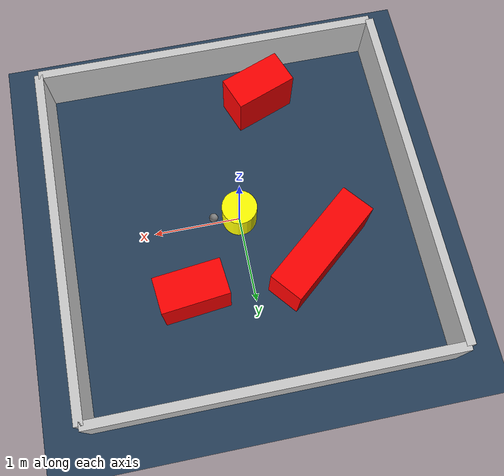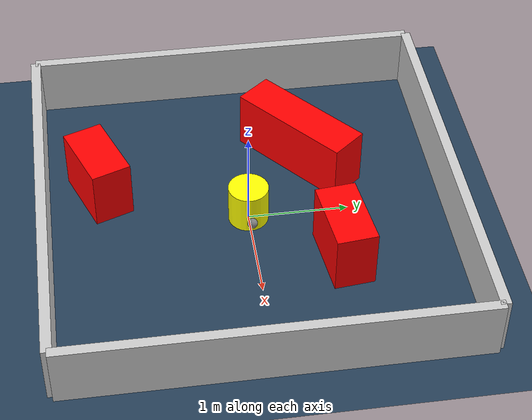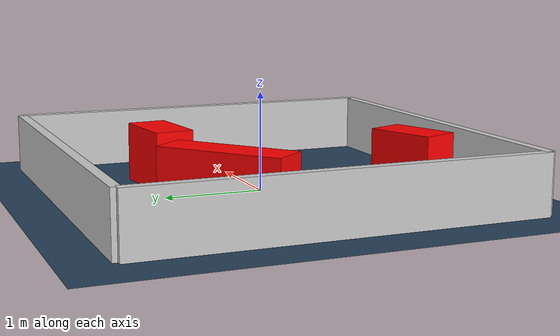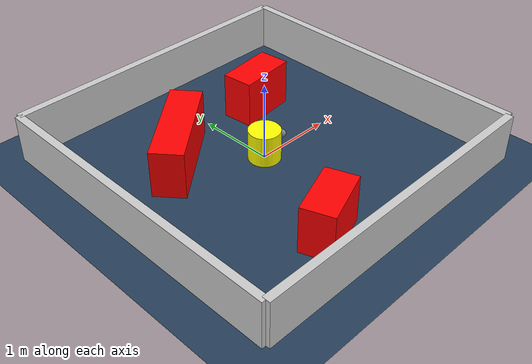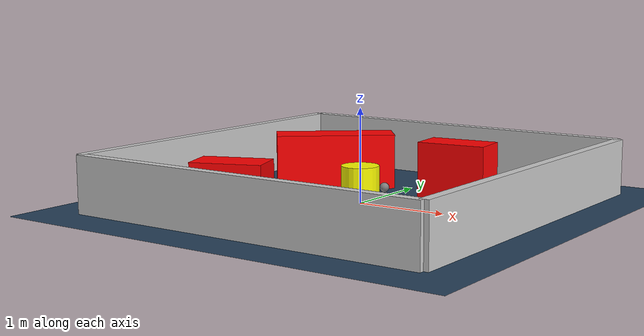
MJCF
<?xml version="1.0" ?>
<mujoco model="generated_environment">
  <option timestep="0.01" integrator="RK4" cone="elliptic"/>
  <default>
    <geom density="1"/>
  </default>
  <asset>
    <texture builtin="gradient" height="3072" rgb1="0.3 0.5 0.7" rgb2="0 0 0" type="skybox" width="512"/>
    <texture builtin="checker" height="300" mark="edge" markrgb="0.8 0.8 0.8" name="groundplane" rgb1="0.2 0.3 0.4" rgb2="0.1 0.2 0.3" type="2d" width="300"/>
    <material name="groundplane" reflectance="0.2" texrepeat="5 5" texture="groundplane" texuniform="true"/>
    <material name="robot" rgba="0.0 1.0 0.0 1"/>
  </asset>
  <worldbody>
    <light dir="0 0 -1" directional="true" pos="0 0 1.5"/>
    <geom condim="4" friction="1.0 0.005 0.001" material="groundplane" name="floor" size="0 0 0.05" type="plane"/>
    <body name="walls">
      <geom name="wall_1" condim="4" pos="-2.0 0.0 0.3" rgba="0.800000011920929 0.800000011920929 0.800000011920929 1.0" size="0.05 2.0 0.3" type="box"/>
      <geom name="wall_2" condim="4" pos="2.0 0.0 0.3" rgba="0.800000011920929 0.800000011920929 0.800000011920929 1.0" size="0.05 2.0 0.3" type="box"/>
      <geom name="wall_3" condim="4" pos="0.0 -2.0 0.3" rgba="0.800000011920929 0.800000011920929 0.800000011920929 1.0" size="2.0 0.05 0.3" type="box"/>
      <geom name="wall_4" condim="4" pos="0.0 2.0 0.3" rgba="0.800000011920929 0.800000011920929 0.800000011920929 1.0" size="2.0 0.05 0.3" type="box"/>
    </body>
    <body name="robot">
      <joint name="joint_x" type="slide" pos="0 0 0" axis="1 0 0"/>
      <joint name="joint_y" type="slide" pos="0 0 0" axis="0 1 0"/>
      <geom name="robot" type="sphere" pos="0.3 0.0 0.2" size="0.05" mass="5." friction="1.0 0.005 0.0001" condim="4" rgba="0.5 0.5 0.5 1.0"/>
      <site name="sensor_ball"/>
    </body>
    <body name="obstacle_movable_1">
      <geom name="obstacle_movable_1" condim="4" pos="0.0 0.0 0.2" euler="0 0 0.0" friction="1.0 0.005 0.001" rgba="1.0 1.0 0.0 1.0" size="0.2 0.2 0.0" type="cylinder" mass="0.1"/>
      <joint type="free"/>
    </body>
    <body name="obstacle_2_static">
      <geom name="obstacle_2_static" condim="4" pos="0.682714533318193 0.8322620077615801 0.3" euler="0 0 6.225835474169941" friction="1.0 0.005 0.001" rgba="1 0 0 1" size="0.3745516947415294 0.2 0.3" type="box"/>
    </body>
    <body name="obstacle_3_static">
      <geom name="obstacle_3_static" condim="4" pos="-0.5093604529342124 -1.43962167981557 0.3" euler="0 0 200.61737151187276" friction="1.0 0.005 0.001" rgba="1 0 0 1" size="0.3613365509640594 0.2 0.3" type="box"/>
    </body>
    <body name="obstacle_4_static">
      <geom name="obstacle_4_static" condim="4" pos="-0.7810365963300836 0.6392538064091051 0.3" euler="0 0 39.59127640877177" friction="1.0 0.005 0.001" rgba="1 0 0 1" size="0.6480201907532397 0.2 0.3" type="box"/>
    </body>
  </worldbody>
  <actuator>
    <motor name="actuator_x" joint="joint_x" gear="1" ctrlrange="-1 1"/>
    <motor name="actuator_y" joint="joint_y" gear="1" ctrlrange="-1 1"/>
  </actuator>
</mujoco>
